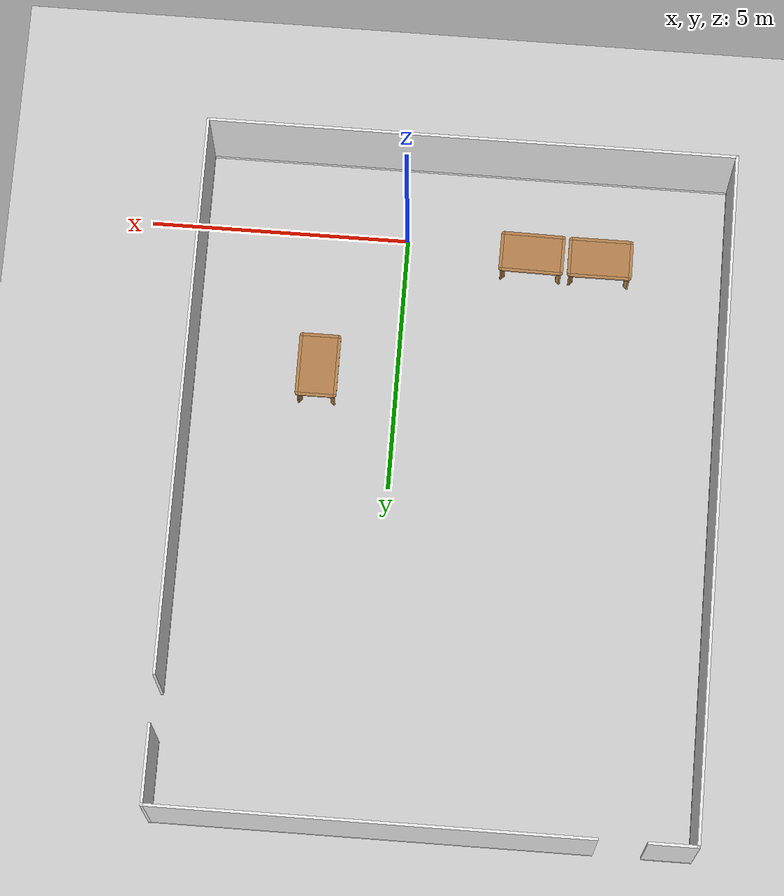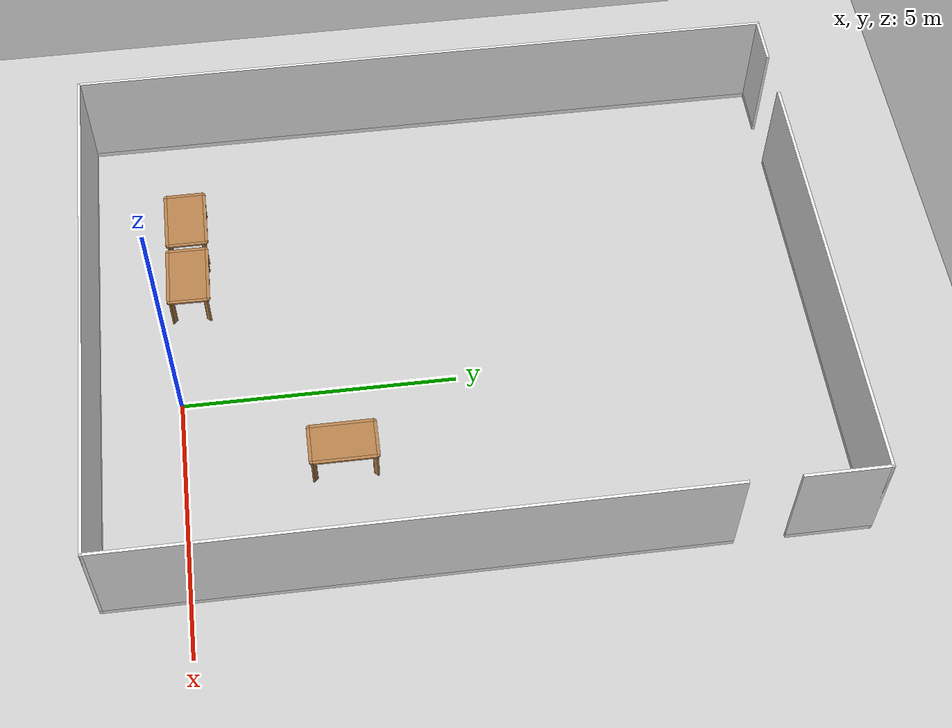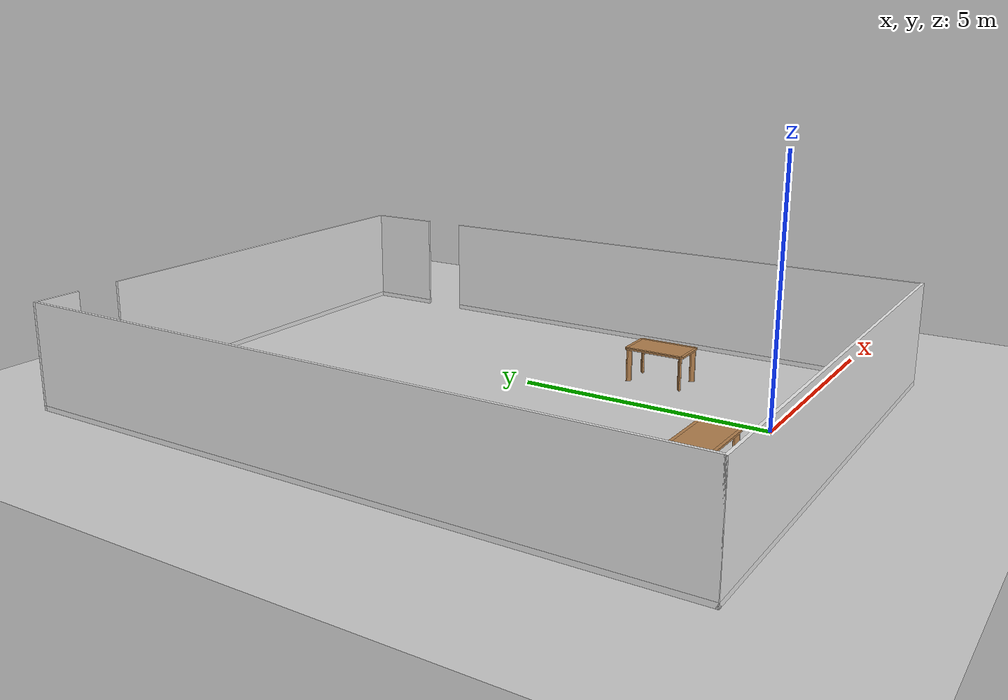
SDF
<sdf version="1.7">
 <world name="default">
  <model name="ground_plane">
   <static>1</static>
   <link name="link">
    <collision name="collision">
     <geometry><plane><normal>0 0 1</normal><size>100 100</size></plane></geometry>
     <surface><friction><ode><mu>100</mu><mu2>50</mu2></ode></friction></surface>
    </collision>
    <visual name="visual">
     <cast_shadows>0</cast_shadows>
     <geometry><plane><normal>0 0 1</normal><size>100 100</size></plane></geometry>
     <material>
      <script><uri>file://media/materials/scripts/gazebo.material</uri><name>Gazebo/Grey</name></script>
     </material>
    </visual>
   </link>
  </model>
  <model name="full_outside_wall">
   <link name="link">
    <inertial>
     <mass>50</mass>
     <inertia><ixx>1</ixx><ixy>0</ixy><ixz>0</ixz><iyy>1</iyy><iyz>0</iyz><izz>1</izz></inertia>
    </inertial>
    <visual name="x00_13y00_bottom_frame">
     <pose>5.0375 -0.0275 0.05 0 -0 0</pose>
     <geometry><box><size>10.185 0.055 0.1</size></box></geometry>
     <material>
      <script><uri>model://base_materials/color/scripts</uri><name>hsr_color/white</name></script>
     </material>
    </visual>
    <collision name="x00_13y00_collision_bottom_frame">
     <pose>5.0375 -0.0275 0.05 0 -0 0</pose>
     <geometry><box><size>10.185 0.055 0.1</size></box></geometry>
    </collision>
    <visual name="wall_x00_13y00">
     <pose>5.0375 -0.0275 1.095 0 -0 0</pose>
     <geometry><box><size>10.185 0.055 1.99</size></box></geometry>
     <material>
      <script>
       <uri>model://base_materials/wall/scripts</uri>
       <uri>model://base_materials/wall/textures</uri>
       <name>wall/white_noise</name>
      </script>
     </material>
    </visual>
    <collision name="wall_x00_13y00">
     <pose>5.0375 -0.002 1.095 0 -0 0</pose>
     <geometry><box><size>10.08 0.055 1.99</size></box></geometry>
    </collision>
    <visual name="x00y00_15_bottom_frame">
     <pose>-0.0275 6.59 0.05 0 -0 0</pose>
     <geometry><box><size>0.055 13.29 0.1</size></box></geometry>
     <material>
      <script><uri>model://base_materials/color/scripts</uri><name>hsr_color/white</name></script>
     </material>
    </visual>
    <collision name="x00y00_15_collision_bottom_frame">
     <pose>-0.0275 6.59 0.05 0 -0 0</pose>
     <geometry><box><size>0.055 13.29 0.1</size></box></geometry>
    </collision>
    <visual name="wall_x00y00_15">
     <pose>-0.0275 6.59 1.095 0 -0 0</pose>
     <geometry><box><size>0.055 13.29 1.99</size></box></geometry>
     <material>
      <script>
       <uri>model://base_materials/wall/scripts</uri>
       <uri>model://base_materials/wall/textures</uri>
       <name>wall/white_noise</name>
      </script>
     </material>
    </visual>
    <collision name="wall_x00y00_x00y15">
     <pose>-0.002 6.59 1.095 0 -0 0</pose>
     <geometry><box><size>0.002 13.29 1.99</size></box></geometry>
    </collision>
    <visual name="x13y00_12_bottom_frame">
     <pose>10.1025 5.3725 0.05 0 -0 0</pose>
     <geometry><box><size>0.055 10.855 0.1</size></box></geometry>
     <material>
      <script><uri>model://base_materials/color/scripts</uri><name>hsr_color/white</name></script>
     </material>
    </visual>
    <collision name="x13y00_12_collision_bottom_frame">
     <pose>10.1025 5.3725 0.05 0 -0 0</pose>
     <geometry><box><size>0.055 10.855 0.1</size></box></geometry>
    </collision>
    <visual name="wall_x13y00_12">
     <pose>10.1025 5.3725 1.095 0 -0 0</pose>
     <geometry><box><size>0.055 10.855 1.99</size></box></geometry>
     <material>
      <script>
       <uri>model://base_materials/wall/scripts</uri>
       <uri>model://base_materials/wall/textures</uri>
       <name>wall/white_noise</name>
      </script>
     </material>
    </visual>
    <collision name="wall_x13y00_12">
     <pose>10.1025 5.3725 1.095 0 -0 0</pose>
     <geometry><box><size>0.055 10.855 1.99</size></box></geometry>
    </collision>
    <visual name="x13y14_16_bottom_frame">
     <pose>10.1025 12.4675 0.05 0 -0 0</pose>
     <geometry><box><size>0.055 1.535 0.1</size></box></geometry>
     <material>
      <script><uri>model://base_materials/color/scripts</uri><name>hsr_color/white</name></script>
     </material>
    </visual>
    <collision name="x13y14_16_collision_bottom_frame">
     <pose>10.1025 12.4675 0.05 0 -0 0</pose>
     <geometry><box><size>0.055 1.535 0.1</size></box></geometry>
    </collision>
    <visual name="wall_x13y14_x13y16">
     <pose>10.1025 12.4675 1.095 0 -0 0</pose>
     <geometry><box><size>0.055 1.535 1.99</size></box></geometry>
     <material>
      <script>
       <uri>model://base_materials/wall/scripts</uri>
       <uri>model://base_materials/wall/textures</uri>
       <name>wall/white_noise</name>
      </script>
     </material>
    </visual>
    <collision name="wall_x13y14_x13y16">
     <pose>10.1025 12.4675 1.095 0 -0 0</pose>
     <geometry><box><size>0.055 1.535 1.99</size></box></geometry>
    </collision>
    <visual name="x00_01y16_bottom_frame">
     <pose>0.4225 13.2075 0.05 0 -0 0</pose>
     <geometry><box><size>0.955 0.055 0.1</size></box></geometry>
     <material>
      <script><uri>model://base_materials/color/scripts</uri><name>hsr_color/white</name></script>
     </material>
    </visual>
    <collision name="x00_01y16_collision_bottom_frame">
     <pose>0.4225 13.2075 0.05 0 -0 0</pose>
     <geometry><box><size>0.955 0.055 0.1</size></box></geometry>
    </collision>
    <visual name="wall_x00_01y16">
     <pose>0.4225 13.2075 1.095 0 -0 0</pose>
     <geometry><box><size>0.955 0.055 1.99</size></box></geometry>
     <material>
      <script>
       <uri>model://base_materials/wall/scripts</uri>
       <uri>model://base_materials/wall/textures</uri>
       <name>wall/white_noise</name>
      </script>
     </material>
    </visual>
    <collision name="wall_x00_x01y16">
     <pose>0.4225 13.2075 1.095 0 -0 0</pose>
     <geometry><box><size>0.955 0.055 1.99</size></box></geometry>
    </collision>
    <visual name="x03_13y16_bottom_frame">
     <pose>5.965 13.2075 0.05 0 -0 0</pose>
     <geometry><box><size>8.33 0.05 0.1</size></box></geometry>
     <material>
      <script><uri>model://base_materials/color/scripts</uri><name>hsr_color/white</name></script>
     </material>
    </visual>
    <collision name="x03_13y16_collision_bottom_frame">
     <pose>5.965 13.2075 0.05 0 -0 0</pose>
     <geometry><box><size>8.33 0.05 0.1</size></box></geometry>
    </collision>
    <visual name="wall_x03_13y16">
     <pose>5.965 13.2075 1.095 0 -0 0</pose>
     <geometry><box><size>8.33 0.055 1.99</size></box></geometry>
     <material>
      <script>
       <uri>model://base_materials/wall/scripts</uri>
       <uri>model://base_materials/wall/textures</uri>
       <name>wall/white_noise</name>
      </script>
     </material>
    </visual>
    <collision name="wall_x03_13y16">
     <pose>5.965 13.2075 1.095 0 -0 0</pose>
     <geometry><box><size>8.33 0.055 1.99</size></box></geometry>
    </collision>
    <velocity_decay><linear>0</linear><angular>0</angular></velocity_decay>
   </link>
   <static>1</static>
   <pose>-6.16587 -1.46718 0 0 -0 0</pose>
  </model>
  <model name="kitchen_table_clone">
   <link name="link">
    <inertial>
     <mass>10</mass>
     <inertia><ixx>1</ixx><ixy>0</ixy><ixz>0</ixz><iyy>1</iyy><iyz>0</iyz><izz>1</izz></inertia>
    </inertial>
    <visual name="center_board">
     <pose>0 0 0.68 0 -0 0</pose>
     <geometry><box><size>0.68 1.13 0.04</size></box></geometry>
     <material>
      <script><uri>model://base_materials/wood/scripts/wood.material</uri><name>base_materials/wood</name></script>
     </material>
    </visual>
    <collision name="collision_center_board">
     <pose>0 0 0.68 0 -0 0</pose>
     <geometry><box><size>0.68 1.13 0.04</size></box></geometry>
    </collision>
    <visual name="front_board">
     <pose>0.37 0 0.68 0 -0 0</pose>
     <geometry><box><size>0.06 1.13 0.04</size></box></geometry>
     <material>
      <script><uri>model://base_materials/wood/scripts/wood.material</uri><name>base_materials/wood</name></script>
     </material>
    </visual>
    <collision name="collision_front_board">
     <pose>0.37 0 0.68 0 -0 0</pose>
     <geometry><box><size>0.06 1.13 0.04</size></box></geometry>
    </collision>
    <visual name="back_board">
     <pose>-0.37 0 0.68 0 -0 0</pose>
     <geometry><box><size>0.06 1.13 0.04</size></box></geometry>
     <material>
      <script><uri>model://base_materials/wood/scripts/wood.material</uri><name>base_materials/wood</name></script>
     </material>
    </visual>
    <collision name="collision_back_board">
     <pose>-0.37 0 0.68 0 -0 0</pose>
     <geometry><box><size>0.06 1.13 0.04</size></box></geometry>
    </collision>
    <visual name="right_board">
     <pose>0 0.595 0.68 0 -0 0</pose>
     <geometry><box><size>0.68 0.06 0.04</size></box></geometry>
     <material>
      <script><uri>model://base_materials/wood/scripts/wood.material</uri><name>base_materials/wood</name></script>
     </material>
    </visual>
    <collision name="collision_right_board">
     <pose>0 0.595 0.68 0 -0 0</pose>
     <geometry><box><size>0.68 0.06 0.04</size></box></geometry>
    </collision>
    <visual name="left_board">
     <pose>0 -0.595 0.68 0 -0 0</pose>
     <geometry><box><size>0.68 0.06 0.04</size></box></geometry>
     <material>
      <script><uri>model://base_materials/wood/scripts/wood.material</uri><name>base_materials/wood</name></script>
     </material>
    </visual>
    <collision name="collision_left_board">
     <pose>0 -0.595 0.68 0 -0 0</pose>
     <geometry><box><size>0.68 0.06 0.04</size></box></geometry>
    </collision>
    <visual name="front_right_corner_board">
     <pose>0.34 0.565 0.68 0 -0 0</pose>
     <geometry><cylinder><radius>0.06</radius><length>0.039</length></cylinder></geometry>
     <material>
      <script><uri>model://base_materials/wood/scripts/wood.material</uri><name>base_materials/wood</name></script>
     </material>
    </visual>
    <collision name="collision_front_right_corner_board">
     <pose>0.34 0.565 0.68 0 -0 0</pose>
     <geometry><cylinder><radius>0.06</radius><length>0.039</length></cylinder></geometry>
    </collision>
    <visual name="front_left_corner_board">
     <pose>0.34 -0.565 0.68 0 -0 0</pose>
     <geometry><cylinder><radius>0.06</radius><length>0.039</length></cylinder></geometry>
     <material>
      <script><uri>model://base_materials/wood/scripts/wood.material</uri><name>base_materials/wood</name></script>
     </material>
    </visual>
    <collision name="collision_front_left_corner_board">
     <pose>0.34 -0.565 0.68 0 -0 0</pose>
     <geometry><cylinder><radius>0.06</radius><length>0.039</length></cylinder></geometry>
    </collision>
    <visual name="front_back_right_corner_board">
     <pose>-0.34 0.565 0.68 0 -0 0</pose>
     <geometry><cylinder><radius>0.06</radius><length>0.039</length></cylinder></geometry>
     <material>
      <script><uri>model://base_materials/wood/scripts/wood.material</uri><name>base_materials/wood</name></script>
     </material>
    </visual>
    <collision name="collision_back_right_corner_board">
     <pose>-0.34 0.565 0.68 0 -0 0</pose>
     <geometry><cylinder><radius>0.06</radius><length>0.039</length></cylinder></geometry>
    </collision>
    <visual name="front_back_left_corner_board">
     <pose>-0.34 -0.565 0.68 0 -0 0</pose>
     <geometry><cylinder><radius>0.06</radius><length>0.039</length></cylinder></geometry>
     <material>
      <script><uri>model://base_materials/wood/scripts/wood.material</uri><name>base_materials/wood</name></script>
     </material>
    </visual>
    <collision name="collision_back_left_corner_board">
     <pose>-0.34 -0.565 0.68 0 -0 0</pose>
     <geometry><cylinder><radius>0.06</radius><length>0.039</length></cylinder></geometry>
    </collision>
    <visual name="front_left_corner_frame1">
     <pose>0.345858 -0.57086 0.33 0 -0 0</pose>
     <geometry><cylinder><radius>0.02</radius><length>0.66</length></cylinder></geometry>
     <material>
      <script><uri>model://base_materials/wood/scripts/wood.material</uri><name>base_materials/wood</name></script>
     </material>
    </visual>
    <collision name="collision_front_left_corner_frame1">
     <pose>0.345858 -0.57086 0.33 0 -0 0</pose>
     <geometry><cylinder><radius>0.02</radius><length>0.66</length></cylinder></geometry>
    </collision>
    <visual name="front_left_corner_frame2">
     <pose>0.317574 -0.54257 0.33 0 -0 0.7854</pose>
     <geometry><box><size>0.04 0.08 0.66</size></box></geometry>
     <material>
      <script><uri>model://base_materials/wood/scripts/wood.material</uri><name>base_materials/wood</name></script>
     </material>
    </visual>
    <collision name="collision_front_left_corner_frame2">
     <pose>0.317574 -0.54257 0.33 0 -0 0.7854</pose>
     <geometry><box><size>0.04 0.08 0.66</size></box></geometry>
    </collision>
    <visual name="front_left_corner_frame3">
     <pose>0.289289 -0.51429 0.33 0 -0 0</pose>
     <geometry><cylinder><radius>0.02</radius><length>0.66</length></cylinder></geometry>
     <material>
      <script><uri>model://base_materials/wood/scripts/wood.material</uri><name>base_materials/wood</name></script>
     </material>
    </visual>
    <collision name="collision_front_left_corner_frame3">
     <pose>0.289289 -0.51429 0.33 0 -0 0</pose>
     <geometry><cylinder><radius>0.02</radius><length>0.66</length></cylinder></geometry>
    </collision>
    <visual name="front_right_corner_frame1">
     <pose>0.345858 0.57086 0.33 0 -0 0</pose>
     <geometry><cylinder><radius>0.02</radius><length>0.66</length></cylinder></geometry>
     <material>
      <script><uri>model://base_materials/wood/scripts/wood.material</uri><name>base_materials/wood</name></script>
     </material>
    </visual>
    <collision name="collision_front_right_corner_frame1">
     <pose>0.345858 0.57086 0.33 0 -0 0</pose>
     <geometry><cylinder><radius>0.02</radius><length>0.66</length></cylinder></geometry>
    </collision>
    <visual name="front_right_corner_frame2">
     <pose>0.317574 0.54257 0.33 0 0 -0.7854</pose>
     <geometry><box><size>0.04 0.08 0.66</size></box></geometry>
     <material>
      <script><uri>model://base_materials/wood/scripts/wood.material</uri><name>base_materials/wood</name></script>
     </material>
    </visual>
    <collision name="collision_front_right_corner_frame2">
     <pose>0.317574 0.54257 0.33 0 0 -0.7854</pose>
     <geometry><box><size>0.04 0.08 0.66</size></box></geometry>
    </collision>
    <visual name="front_right_corner_frame3">
     <pose>0.289289 0.51429 0.33 0 -0 0</pose>
     <geometry><cylinder><radius>0.02</radius><length>0.66</length></cylinder></geometry>
     <material>
      <script><uri>model://base_materials/wood/scripts/wood.material</uri><name>base_materials/wood</name></script>
     </material>
    </visual>
    <collision name="collision_front_right_corner_frame3">
     <pose>0.289289 0.51429 0.33 0 -0 0</pose>
     <geometry><cylinder><radius>0.02</radius><length>0.66</length></cylinder></geometry>
    </collision>
    <visual name="back_left_corner_frame1">
     <pose>-0.345858 -0.57086 0.33 0 -0 0</pose>
     <geometry><cylinder><radius>0.02</radius><length>0.66</length></cylinder></geometry>
     <material>
      <script><uri>model://base_materials/wood/scripts/wood.material</uri><name>base_materials/wood</name></script>
     </material>
    </visual>
    <collision name="collision_back_left_corner_frame1">
     <pose>-0.345858 -0.57086 0.33 0 -0 0</pose>
     <geometry><cylinder><radius>0.02</radius><length>0.66</length></cylinder></geometry>
    </collision>
    <visual name="back_left_corner_frame2">
     <pose>-0.317574 -0.54257 0.33 0 0 -0.7854</pose>
     <geometry><box><size>0.04 0.08 0.66</size></box></geometry>
     <material>
      <script><uri>model://base_materials/wood/scripts/wood.material</uri><name>base_materials/wood</name></script>
     </material>
    </visual>
    <collision name="collision_back_left_corner_frame2">
     <pose>-0.317574 -0.54257 0.33 0 0 -0.7854</pose>
     <geometry><box><size>0.04 0.08 0.66</size></box></geometry>
    </collision>
    <visual name="back_left_corner_frame3">
     <pose>-0.289289 -0.51429 0.33 0 -0 0</pose>
     <geometry><cylinder><radius>0.02</radius><length>0.66</length></cylinder></geometry>
     <material>
      <script><uri>model://base_materials/wood/scripts/wood.material</uri><name>base_materials/wood</name></script>
     </material>
    </visual>
    <collision name="collision_back_left_corner_frame3">
     <pose>-0.289289 -0.51429 0.33 0 -0 0</pose>
     <geometry><cylinder><radius>0.02</radius><length>0.66</length></cylinder></geometry>
    </collision>
    <visual name="back_right_corner_frame1">
     <pose>-0.345858 0.57086 0.33 0 -0 0</pose>
     <geometry><cylinder><radius>0.02</radius><length>0.66</length></cylinder></geometry>
     <material>
      <script><uri>model://base_materials/wood/scripts/wood.material</uri><name>base_materials/wood</name></script>
     </material>
    </visual>
    <collision name="collision_back_right_corner_frame1">
     <pose>-0.345858 0.57086 0.33 0 -0 0</pose>
     <geometry><cylinder><radius>0.02</radius><length>0.66</length></cylinder></geometry>
    </collision>
    <visual name="back_right_corner_frame2">
     <pose>-0.317574 0.54257 0.33 0 -0 0.7854</pose>
     <geometry><box><size>0.04 0.08 0.66</size></box></geometry>
     <material>
      <script><uri>model://base_materials/wood/scripts/wood.material</uri><name>base_materials/wood</name></script>
     </material>
    </visual>
    <collision name="collision_back_right_corner_frame2">
     <pose>-0.317574 0.54257 0.33 0 -0 0.7854</pose>
     <geometry><box><size>0.04 0.08 0.66</size></box></geometry>
    </collision>
    <visual name="back_right_corner_frame3">
     <pose>-0.289289 0.51429 0.33 0 -0 0</pose>
     <geometry><cylinder><radius>0.02</radius><length>0.66</length></cylinder></geometry>
     <material>
      <script><uri>model://base_materials/wood/scripts/wood.material</uri><name>base_materials/wood</name></script>
     </material>
    </visual>
    <collision name="collision_back_right_corner_frame3">
     <pose>-0.289289 0.51429 0.33 0 -0 0</pose>
     <geometry><cylinder><radius>0.02</radius><length>0.66</length></cylinder></geometry>
    </collision>
    <velocity_decay><linear>0</linear><angular>0</angular></velocity_decay>
   </link>
   <static>0</static>
   <pose>-2.44109 0.264228 -2e-06 0 -7e-06 -1.58411</pose>
  </model>
  <model name="kitchen_table_clone_2">
   <link name="link">
    <inertial>
     <mass>10</mass>
     <inertia><ixx>1</ixx><ixy>0</ixy><ixz>0</ixz><iyy>1</iyy><iyz>0</iyz><izz>1</izz></inertia>
    </inertial>
    <visual name="center_board">
     <pose>0 0 0.68 0 -0 0</pose>
     <geometry><box><size>0.68 1.13 0.04</size></box></geometry>
     <material>
      <script><uri>model://base_materials/wood/scripts/wood.material</uri><name>base_materials/wood</name></script>
     </material>
    </visual>
    <collision name="collision_center_board">
     <pose>0 0 0.68 0 -0 0</pose>
     <geometry><box><size>0.68 1.13 0.04</size></box></geometry>
    </collision>
    <visual name="front_board">
     <pose>0.37 0 0.68 0 -0 0</pose>
     <geometry><box><size>0.06 1.13 0.04</size></box></geometry>
     <material>
      <script><uri>model://base_materials/wood/scripts/wood.material</uri><name>base_materials/wood</name></script>
     </material>
    </visual>
    <collision name="collision_front_board">
     <pose>0.37 0 0.68 0 -0 0</pose>
     <geometry><box><size>0.06 1.13 0.04</size></box></geometry>
    </collision>
    <visual name="back_board">
     <pose>-0.37 0 0.68 0 -0 0</pose>
     <geometry><box><size>0.06 1.13 0.04</size></box></geometry>
     <material>
      <script><uri>model://base_materials/wood/scripts/wood.material</uri><name>base_materials/wood</name></script>
     </material>
    </visual>
    <collision name="collision_back_board">
     <pose>-0.37 0 0.68 0 -0 0</pose>
     <geometry><box><size>0.06 1.13 0.04</size></box></geometry>
    </collision>
    <visual name="right_board">
     <pose>0 0.595 0.68 0 -0 0</pose>
     <geometry><box><size>0.68 0.06 0.04</size></box></geometry>
     <material>
      <script><uri>model://base_materials/wood/scripts/wood.material</uri><name>base_materials/wood</name></script>
     </material>
    </visual>
    <collision name="collision_right_board">
     <pose>0 0.595 0.68 0 -0 0</pose>
     <geometry><box><size>0.68 0.06 0.04</size></box></geometry>
    </collision>
    <visual name="left_board">
     <pose>0 -0.595 0.68 0 -0 0</pose>
     <geometry><box><size>0.68 0.06 0.04</size></box></geometry>
     <material>
      <script><uri>model://base_materials/wood/scripts/wood.material</uri><name>base_materials/wood</name></script>
     </material>
    </visual>
    <collision name="collision_left_board">
     <pose>0 -0.595 0.68 0 -0 0</pose>
     <geometry><box><size>0.68 0.06 0.04</size></box></geometry>
    </collision>
    <visual name="front_right_corner_board">
     <pose>0.34 0.565 0.68 0 -0 0</pose>
     <geometry><cylinder><radius>0.06</radius><length>0.039</length></cylinder></geometry>
     <material>
      <script><uri>model://base_materials/wood/scripts/wood.material</uri><name>base_materials/wood</name></script>
     </material>
    </visual>
    <collision name="collision_front_right_corner_board">
     <pose>0.34 0.565 0.68 0 -0 0</pose>
     <geometry><cylinder><radius>0.06</radius><length>0.039</length></cylinder></geometry>
    </collision>
    <visual name="front_left_corner_board">
     <pose>0.34 -0.565 0.68 0 -0 0</pose>
     <geometry><cylinder><radius>0.06</radius><length>0.039</length></cylinder></geometry>
     <material>
      <script><uri>model://base_materials/wood/scripts/wood.material</uri><name>base_materials/wood</name></script>
     </material>
    </visual>
    <collision name="collision_front_left_corner_board">
     <pose>0.34 -0.565 0.68 0 -0 0</pose>
     <geometry><cylinder><radius>0.06</radius><length>0.039</length></cylinder></geometry>
    </collision>
    <visual name="front_back_right_corner_board">
     <pose>-0.34 0.565 0.68 0 -0 0</pose>
     <geometry><cylinder><radius>0.06</radius><length>0.039</length></cylinder></geometry>
     <material>
      <script><uri>model://base_materials/wood/scripts/wood.material</uri><name>base_materials/wood</name></script>
     </material>
    </visual>
    <collision name="collision_back_right_corner_board">
     <pose>-0.34 0.565 0.68 0 -0 0</pose>
     <geometry><cylinder><radius>0.06</radius><length>0.039</length></cylinder></geometry>
    </collision>
    <visual name="front_back_left_corner_board">
     <pose>-0.34 -0.565 0.68 0 -0 0</pose>
     <geometry><cylinder><radius>0.06</radius><length>0.039</length></cylinder></geometry>
     <material>
      <script><uri>model://base_materials/wood/scripts/wood.material</uri><name>base_materials/wood</name></script>
     </material>
    </visual>
    <collision name="collision_back_left_corner_board">
     <pose>-0.34 -0.565 0.68 0 -0 0</pose>
     <geometry><cylinder><radius>0.06</radius><length>0.039</length></cylinder></geometry>
    </collision>
    <visual name="front_left_corner_frame1">
     <pose>0.345858 -0.57086 0.33 0 -0 0</pose>
     <geometry><cylinder><radius>0.02</radius><length>0.66</length></cylinder></geometry>
     <material>
      <script><uri>model://base_materials/wood/scripts/wood.material</uri><name>base_materials/wood</name></script>
     </material>
    </visual>
    <collision name="collision_front_left_corner_frame1">
     <pose>0.345858 -0.57086 0.33 0 -0 0</pose>
     <geometry><cylinder><radius>0.02</radius><length>0.66</length></cylinder></geometry>
    </collision>
    <visual name="front_left_corner_frame2">
     <pose>0.317574 -0.54257 0.33 0 -0 0.7854</pose>
     <geometry><box><size>0.04 0.08 0.66</size></box></geometry>
     <material>
      <script><uri>model://base_materials/wood/scripts/wood.material</uri><name>base_materials/wood</name></script>
     </material>
    </visual>
    <collision name="collision_front_left_corner_frame2">
     <pose>0.317574 -0.54257 0.33 0 -0 0.7854</pose>
     <geometry><box><size>0.04 0.08 0.66</size></box></geometry>
    </collision>
    <visual name="front_left_corner_frame3">
     <pose>0.289289 -0.51429 0.33 0 -0 0</pose>
     <geometry><cylinder><radius>0.02</radius><length>0.66</length></cylinder></geometry>
     <material>
      <script><uri>model://base_materials/wood/scripts/wood.material</uri><name>base_materials/wood</name></script>
     </material>
    </visual>
    <collision name="collision_front_left_corner_frame3">
     <pose>0.289289 -0.51429 0.33 0 -0 0</pose>
     <geometry><cylinder><radius>0.02</radius><length>0.66</length></cylinder></geometry>
    </collision>
    <visual name="front_right_corner_frame1">
     <pose>0.345858 0.57086 0.33 0 -0 0</pose>
     <geometry><cylinder><radius>0.02</radius><length>0.66</length></cylinder></geometry>
     <material>
      <script><uri>model://base_materials/wood/scripts/wood.material</uri><name>base_materials/wood</name></script>
     </material>
    </visual>
    <collision name="collision_front_right_corner_frame1">
     <pose>0.345858 0.57086 0.33 0 -0 0</pose>
     <geometry><cylinder><radius>0.02</radius><length>0.66</length></cylinder></geometry>
    </collision>
    <visual name="front_right_corner_frame2">
     <pose>0.317574 0.54257 0.33 0 0 -0.7854</pose>
     <geometry><box><size>0.04 0.08 0.66</size></box></geometry>
     <material>
      <script><uri>model://base_materials/wood/scripts/wood.material</uri><name>base_materials/wood</name></script>
     </material>
    </visual>
    <collision name="collision_front_right_corner_frame2">
     <pose>0.317574 0.54257 0.33 0 0 -0.7854</pose>
     <geometry><box><size>0.04 0.08 0.66</size></box></geometry>
    </collision>
    <visual name="front_right_corner_frame3">
     <pose>0.289289 0.51429 0.33 0 -0 0</pose>
     <geometry><cylinder><radius>0.02</radius><length>0.66</length></cylinder></geometry>
     <material>
      <script><uri>model://base_materials/wood/scripts/wood.material</uri><name>base_materials/wood</name></script>
     </material>
    </visual>
    <collision name="collision_front_right_corner_frame3">
     <pose>0.289289 0.51429 0.33 0 -0 0</pose>
     <geometry><cylinder><radius>0.02</radius><length>0.66</length></cylinder></geometry>
    </collision>
    <visual name="back_left_corner_frame1">
     <pose>-0.345858 -0.57086 0.33 0 -0 0</pose>
     <geometry><cylinder><radius>0.02</radius><length>0.66</length></cylinder></geometry>
     <material>
      <script><uri>model://base_materials/wood/scripts/wood.material</uri><name>base_materials/wood</name></script>
     </material>
    </visual>
    <collision name="collision_back_left_corner_frame1">
     <pose>-0.345858 -0.57086 0.33 0 -0 0</pose>
     <geometry><cylinder><radius>0.02</radius><length>0.66</length></cylinder></geometry>
    </collision>
    <visual name="back_left_corner_frame2">
     <pose>-0.317574 -0.54257 0.33 0 0 -0.7854</pose>
     <geometry><box><size>0.04 0.08 0.66</size></box></geometry>
     <material>
      <script><uri>model://base_materials/wood/scripts/wood.material</uri><name>base_materials/wood</name></script>
     </material>
    </visual>
    <collision name="collision_back_left_corner_frame2">
     <pose>-0.317574 -0.54257 0.33 0 0 -0.7854</pose>
     <geometry><box><size>0.04 0.08 0.66</size></box></geometry>
    </collision>
    <visual name="back_left_corner_frame3">
     <pose>-0.289289 -0.51429 0.33 0 -0 0</pose>
     <geometry><cylinder><radius>0.02</radius><length>0.66</length></cylinder></geometry>
     <material>
      <script><uri>model://base_materials/wood/scripts/wood.material</uri><name>base_materials/wood</name></script>
     </material>
    </visual>
    <collision name="collision_back_left_corner_frame3">
     <pose>-0.289289 -0.51429 0.33 0 -0 0</pose>
     <geometry><cylinder><radius>0.02</radius><length>0.66</length></cylinder></geometry>
    </collision>
    <visual name="back_right_corner_frame1">
     <pose>-0.345858 0.57086 0.33 0 -0 0</pose>
     <geometry><cylinder><radius>0.02</radius><length>0.66</length></cylinder></geometry>
     <material>
      <script><uri>model://base_materials/wood/scripts/wood.material</uri><name>base_materials/wood</name></script>
     </material>
    </visual>
    <collision name="collision_back_right_corner_frame1">
     <pose>-0.345858 0.57086 0.33 0 -0 0</pose>
     <geometry><cylinder><radius>0.02</radius><length>0.66</length></cylinder></geometry>
    </collision>
    <visual name="back_right_corner_frame2">
     <pose>-0.317574 0.54257 0.33 0 -0 0.7854</pose>
     <geometry><box><size>0.04 0.08 0.66</size></box></geometry>
     <material>
      <script><uri>model://base_materials/wood/scripts/wood.material</uri><name>base_materials/wood</name></script>
     </material>
    </visual>
    <collision name="collision_back_right_corner_frame2">
     <pose>-0.317574 0.54257 0.33 0 -0 0.7854</pose>
     <geometry><box><size>0.04 0.08 0.66</size></box></geometry>
    </collision>
    <visual name="back_right_corner_frame3">
     <pose>-0.289289 0.51429 0.33 0 -0 0</pose>
     <geometry><cylinder><radius>0.02</radius><length>0.66</length></cylinder></geometry>
     <material>
      <script><uri>model://base_materials/wood/scripts/wood.material</uri><name>base_materials/wood</name></script>
     </material>
    </visual>
    <collision name="collision_back_right_corner_frame3">
     <pose>-0.289289 0.51429 0.33 0 -0 0</pose>
     <geometry><cylinder><radius>0.02</radius><length>0.66</length></cylinder></geometry>
    </collision>
    <velocity_decay><linear>0</linear><angular>0</angular></velocity_decay>
   </link>
   <static>0</static>
   <pose>1.50778 2.82594 -2e-06 0 -7e-06 0</pose>
  </model>
  <model name="kitchen_table_0_clone">
   <link name="link">
    <inertial>
     <mass>10</mass>
     <inertia><ixx>1</ixx><ixy>0</ixy><ixz>0</ixz><iyy>1</iyy><iyz>0</iyz><izz>1</izz></inertia>
    </inertial>
    <visual name="center_board">
     <pose>0 0 0.68 0 -0 0</pose>
     <geometry><box><size>0.68 1.13 0.04</size></box></geometry>
     <material>
      <script><uri>model://base_materials/wood/scripts/wood.material</uri><name>base_materials/wood</name></script>
     </material>
    </visual>
    <collision name="collision_center_board">
     <pose>0 0 0.68 0 -0 0</pose>
     <geometry><box><size>0.68 1.13 0.04</size></box></geometry>
    </collision>
    <visual name="front_board">
     <pose>0.37 0 0.68 0 -0 0</pose>
     <geometry><box><size>0.06 1.13 0.04</size></box></geometry>
     <material>
      <script><uri>model://base_materials/wood/scripts/wood.material</uri><name>base_materials/wood</name></script>
     </material>
    </visual>
    <collision name="collision_front_board">
     <pose>0.37 0 0.68 0 -0 0</pose>
     <geometry><box><size>0.06 1.13 0.04</size></box></geometry>
    </collision>
    <visual name="back_board">
     <pose>-0.37 0 0.68 0 -0 0</pose>
     <geometry><box><size>0.06 1.13 0.04</size></box></geometry>
     <material>
      <script><uri>model://base_materials/wood/scripts/wood.material</uri><name>base_materials/wood</name></script>
     </material>
    </visual>
    <collision name="collision_back_board">
     <pose>-0.37 0 0.68 0 -0 0</pose>
     <geometry><box><size>0.06 1.13 0.04</size></box></geometry>
    </collision>
    <visual name="right_board">
     <pose>0 0.595 0.68 0 -0 0</pose>
     <geometry><box><size>0.68 0.06 0.04</size></box></geometry>
     <material>
      <script><uri>model://base_materials/wood/scripts/wood.material</uri><name>base_materials/wood</name></script>
     </material>
    </visual>
    <collision name="collision_right_board">
     <pose>0 0.595 0.68 0 -0 0</pose>
     <geometry><box><size>0.68 0.06 0.04</size></box></geometry>
    </collision>
    <visual name="left_board">
     <pose>0 -0.595 0.68 0 -0 0</pose>
     <geometry><box><size>0.68 0.06 0.04</size></box></geometry>
     <material>
      <script><uri>model://base_materials/wood/scripts/wood.material</uri><name>base_materials/wood</name></script>
     </material>
    </visual>
    <collision name="collision_left_board">
     <pose>0 -0.595 0.68 0 -0 0</pose>
     <geometry><box><size>0.68 0.06 0.04</size></box></geometry>
    </collision>
    <visual name="front_right_corner_board">
     <pose>0.34 0.565 0.68 0 -0 0</pose>
     <geometry><cylinder><radius>0.06</radius><length>0.039</length></cylinder></geometry>
     <material>
      <script><uri>model://base_materials/wood/scripts/wood.material</uri><name>base_materials/wood</name></script>
     </material>
    </visual>
    <collision name="collision_front_right_corner_board">
     <pose>0.34 0.565 0.68 0 -0 0</pose>
     <geometry><cylinder><radius>0.06</radius><length>0.039</length></cylinder></geometry>
    </collision>
    <visual name="front_left_corner_board">
     <pose>0.34 -0.565 0.68 0 -0 0</pose>
     <geometry><cylinder><radius>0.06</radius><length>0.039</length></cylinder></geometry>
     <material>
      <script><uri>model://base_materials/wood/scripts/wood.material</uri><name>base_materials/wood</name></script>
     </material>
    </visual>
    <collision name="collision_front_left_corner_board">
     <pose>0.34 -0.565 0.68 0 -0 0</pose>
     <geometry><cylinder><radius>0.06</radius><length>0.039</length></cylinder></geometry>
    </collision>
    <visual name="front_back_right_corner_board">
     <pose>-0.34 0.565 0.68 0 -0 0</pose>
     <geometry><cylinder><radius>0.06</radius><length>0.039</length></cylinder></geometry>
     <material>
      <script><uri>model://base_materials/wood/scripts/wood.material</uri><name>base_materials/wood</name></script>
     </material>
    </visual>
    <collision name="collision_back_right_corner_board">
     <pose>-0.34 0.565 0.68 0 -0 0</pose>
     <geometry><cylinder><radius>0.06</radius><length>0.039</length></cylinder></geometry>
    </collision>
    <visual name="front_back_left_corner_board">
     <pose>-0.34 -0.565 0.68 0 -0 0</pose>
     <geometry><cylinder><radius>0.06</radius><length>0.039</length></cylinder></geometry>
     <material>
      <script><uri>model://base_materials/wood/scripts/wood.material</uri><name>base_materials/wood</name></script>
     </material>
    </visual>
    <collision name="collision_back_left_corner_board">
     <pose>-0.34 -0.565 0.68 0 -0 0</pose>
     <geometry><cylinder><radius>0.06</radius><length>0.039</length></cylinder></geometry>
    </collision>
    <visual name="front_left_corner_frame1">
     <pose>0.345858 -0.57086 0.33 0 -0 0</pose>
     <geometry><cylinder><radius>0.02</radius><length>0.66</length></cylinder></geometry>
     <material>
      <script><uri>model://base_materials/wood/scripts/wood.material</uri><name>base_materials/wood</name></script>
     </material>
    </visual>
    <collision name="collision_front_left_corner_frame1">
     <pose>0.345858 -0.57086 0.33 0 -0 0</pose>
     <geometry><cylinder><radius>0.02</radius><length>0.66</length></cylinder></geometry>
    </collision>
    <visual name="front_left_corner_frame2">
     <pose>0.317574 -0.54257 0.33 0 -0 0.7854</pose>
     <geometry><box><size>0.04 0.08 0.66</size></box></geometry>
     <material>
      <script><uri>model://base_materials/wood/scripts/wood.material</uri><name>base_materials/wood</name></script>
     </material>
    </visual>
    <collision name="collision_front_left_corner_frame2">
     <pose>0.317574 -0.54257 0.33 0 -0 0.7854</pose>
     <geometry><box><size>0.04 0.08 0.66</size></box></geometry>
    </collision>
    <visual name="front_left_corner_frame3">
     <pose>0.289289 -0.51429 0.33 0 -0 0</pose>
     <geometry><cylinder><radius>0.02</radius><length>0.66</length></cylinder></geometry>
     <material>
      <script><uri>model://base_materials/wood/scripts/wood.material</uri><name>base_materials/wood</name></script>
     </material>
    </visual>
    <collision name="collision_front_left_corner_frame3">
     <pose>0.289289 -0.51429 0.33 0 -0 0</pose>
     <geometry><cylinder><radius>0.02</radius><length>0.66</length></cylinder></geometry>
    </collision>
    <visual name="front_right_corner_frame1">
     <pose>0.345858 0.57086 0.33 0 -0 0</pose>
     <geometry><cylinder><radius>0.02</radius><length>0.66</length></cylinder></geometry>
     <material>
      <script><uri>model://base_materials/wood/scripts/wood.material</uri><name>base_materials/wood</name></script>
     </material>
    </visual>
    <collision name="collision_front_right_corner_frame1">
     <pose>0.345858 0.57086 0.33 0 -0 0</pose>
     <geometry><cylinder><radius>0.02</radius><length>0.66</length></cylinder></geometry>
    </collision>
    <visual name="front_right_corner_frame2">
     <pose>0.317574 0.54257 0.33 0 0 -0.7854</pose>
     <geometry><box><size>0.04 0.08 0.66</size></box></geometry>
     <material>
      <script><uri>model://base_materials/wood/scripts/wood.material</uri><name>base_materials/wood</name></script>
     </material>
    </visual>
    <collision name="collision_front_right_corner_frame2">
     <pose>0.317574 0.54257 0.33 0 0 -0.7854</pose>
     <geometry><box><size>0.04 0.08 0.66</size></box></geometry>
    </collision>
    <visual name="front_right_corner_frame3">
     <pose>0.289289 0.51429 0.33 0 -0 0</pose>
     <geometry><cylinder><radius>0.02</radius><length>0.66</length></cylinder></geometry>
     <material>
      <script><uri>model://base_materials/wood/scripts/wood.material</uri><name>base_materials/wood</name></script>
     </material>
    </visual>
    <collision name="collision_front_right_corner_frame3">
     <pose>0.289289 0.51429 0.33 0 -0 0</pose>
     <geometry><cylinder><radius>0.02</radius><length>0.66</length></cylinder></geometry>
    </collision>
    <visual name="back_left_corner_frame1">
     <pose>-0.345858 -0.57086 0.33 0 -0 0</pose>
     <geometry><cylinder><radius>0.02</radius><length>0.66</length></cylinder></geometry>
     <material>
      <script><uri>model://base_materials/wood/scripts/wood.material</uri><name>base_materials/wood</name></script>
     </material>
    </visual>
    <collision name="collision_back_left_corner_frame1">
     <pose>-0.345858 -0.57086 0.33 0 -0 0</pose>
     <geometry><cylinder><radius>0.02</radius><length>0.66</length></cylinder></geometry>
    </collision>
    <visual name="back_left_corner_frame2">
     <pose>-0.317574 -0.54257 0.33 0 0 -0.7854</pose>
     <geometry><box><size>0.04 0.08 0.66</size></box></geometry>
     <material>
      <script><uri>model://base_materials/wood/scripts/wood.material</uri><name>base_materials/wood</name></script>
     </material>
    </visual>
    <collision name="collision_back_left_corner_frame2">
     <pose>-0.317574 -0.54257 0.33 0 0 -0.7854</pose>
     <geometry><box><size>0.04 0.08 0.66</size></box></geometry>
    </collision>
    <visual name="back_left_corner_frame3">
     <pose>-0.289289 -0.51429 0.33 0 -0 0</pose>
     <geometry><cylinder><radius>0.02</radius><length>0.66</length></cylinder></geometry>
     <material>
      <script><uri>model://base_materials/wood/scripts/wood.material</uri><name>base_materials/wood</name></script>
     </material>
    </visual>
    <collision name="collision_back_left_corner_frame3">
     <pose>-0.289289 -0.51429 0.33 0 -0 0</pose>
     <geometry><cylinder><radius>0.02</radius><length>0.66</length></cylinder></geometry>
    </collision>
    <visual name="back_right_corner_frame1">
     <pose>-0.345858 0.57086 0.33 0 -0 0</pose>
     <geometry><cylinder><radius>0.02</radius><length>0.66</length></cylinder></geometry>
     <material>
      <script><uri>model://base_materials/wood/scripts/wood.material</uri><name>base_materials/wood</name></script>
     </material>
    </visual>
    <collision name="collision_back_right_corner_frame1">
     <pose>-0.345858 0.57086 0.33 0 -0 0</pose>
     <geometry><cylinder><radius>0.02</radius><length>0.66</length></cylinder></geometry>
    </collision>
    <visual name="back_right_corner_frame2">
     <pose>-0.317574 0.54257 0.33 0 -0 0.7854</pose>
     <geometry><box><size>0.04 0.08 0.66</size></box></geometry>
     <material>
      <script><uri>model://base_materials/wood/scripts/wood.material</uri><name>base_materials/wood</name></script>
     </material>
    </visual>
    <collision name="collision_back_right_corner_frame2">
     <pose>-0.317574 0.54257 0.33 0 -0 0.7854</pose>
     <geometry><box><size>0.04 0.08 0.66</size></box></geometry>
    </collision>
    <visual name="back_right_corner_frame3">
     <pose>-0.289289 0.51429 0.33 0 -0 0</pose>
     <geometry><cylinder><radius>0.02</radius><length>0.66</length></cylinder></geometry>
     <material>
      <script><uri>model://base_materials/wood/scripts/wood.material</uri><name>base_materials/wood</name></script>
     </material>
    </visual>
    <collision name="collision_back_right_corner_frame3">
     <pose>-0.289289 0.51429 0.33 0 -0 0</pose>
     <geometry><cylinder><radius>0.02</radius><length>0.66</length></cylinder></geometry>
    </collision>
    <velocity_decay><linear>0</linear><angular>0</angular></velocity_decay>
   </link>
   <static>0</static>
   <pose>-3.7661 0.275774 -2e-06 0 -7e-06 -1.56852</pose>
  </model>
 </world>
</sdf>
